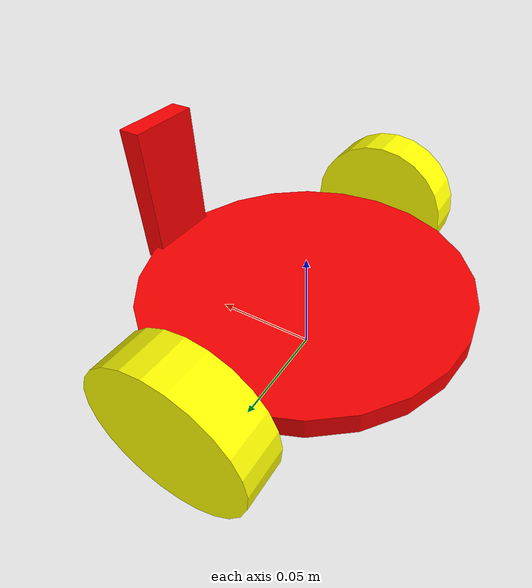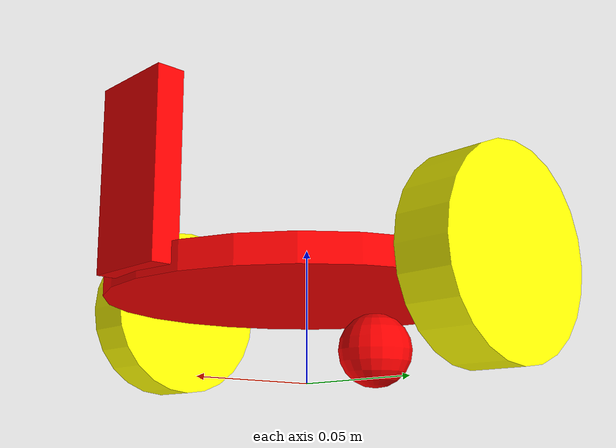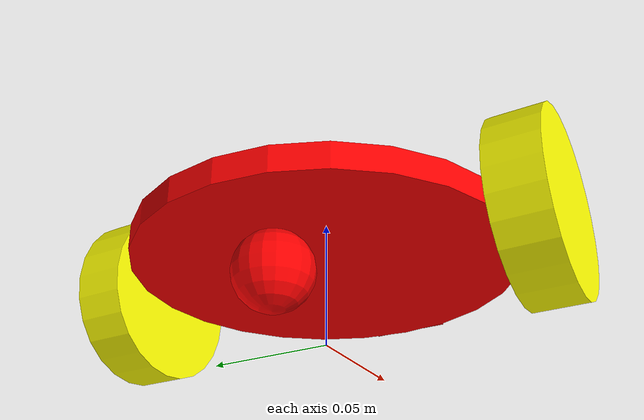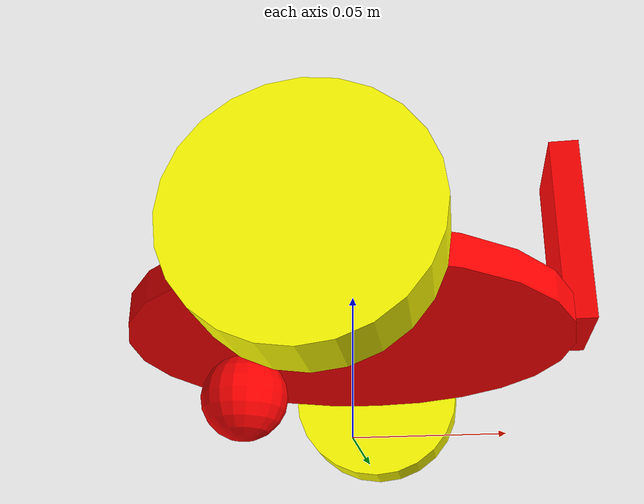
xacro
<?xml version="1.0" encoding="UTF-8"?>
<robot xmlns:xacro= "http://www.ros.org/wiki/xacro" name="GoPiGo3">
<xacro:property name="width_base" value="0.01"/>
<xacro:property name="radius_base" value="0.075"/>
<xacro:property name="radius_wheel" value="0.0350"/>
<xacro:property name="width_wheel" value="0.02"/>
<xacro:property name="pi" value="3.1415"/>
<xacro:property name="camera_height" value="0.065"/>
<xacro:property name="counter_weight_radius" value="0.0150">

</xacro:property>
<material name="red">
    <color rgba="1.0 0.0 0.0 1.0"/>
</material>
<material name="yellow">
    <color rgba="1.0 1.0 0.0 1.0"/>
</material>
<xacro:macro name="default_inertia" params="mass">
    <inertial>
        <mass value="${mass/10}"/>
        <inertia ixx="0.001" ixy="0.0" ixz="0.0" iyy="0.001" iyz="0.0" izz="0.001"/>
    </inertial>
</xacro:macro>
<xacro:macro name="wheel" params="preffix">
    <link name="${preffix}_wheel">
        <visual>
            <geometry>
                <cylinder radius="${radius_wheel}" length="${width_wheel}"/>
            </geometry>
             <material name="yellow"/>
            <origin rpy="${pi/2} 0.0 0.0" xyz="0.0 0.0 0.0"/>
        </visual>
        <collision>
            <geometry>
                <cylinder radius="${radius_wheel}" length="${width_wheel}"/>
            </geometry>
            <origin rpy="${pi/2} 0.0 0.0" xyz="0.0 0.0 0.0"/>
        </collision>
        <xacro:default_inertia mass="1.0"/>
    </link>
    <!-- Transmission Elements-->
<gazebo reference="${preffix}_wheel">
    <material>
        Gazebo/Grey
    </material>
</gazebo>
    <transmission name="${preffix}_wheel_trans">
        <type>
            transmission_interface/SimpleTransmission
        </type>
        <actuator name="${preffix}_wheel_motor">
            <mechanicalReduction>
                1.0
            </mechanicalReduction>
        </actuator>
        <joint name="${preffix}_wheel_to_base_link" type="continuous">
            <hardwareInterface>
                hardware_interface/VelocityJointInterface
            </hardwareInterface>
        </joint>
</transmission>
</xacro:macro>

<xacro:macro name="wheel_joint" params="preffix orientation">
    <joint name="${preffix}_wheel_to_base_link" type="continuous">
        <parent link="base_link"/>
        <child  link="${preffix}_wheel"/>
        <origin xyz="0.0 ${orientation*(radius_base+(width_wheel/2))} ${radius_wheel}" rpy="0.0 0.0 0.0"/>
        <axis xyz="0.0 1.0 0.0"/>
    </joint>
</xacro:macro>

<link name="base_link">
    <visual>
        <geometry>
            <cylinder radius="${radius_base}" length="${width_base}"/>
        </geometry>
        <origin rpy="0.0 0.0 0.0" xyz="0.0 0.0 ${radius_wheel}"/>
        <material name="red"/>
    </visual>
    <collision>
        <geometry>
            <cylinder radius="${radius_base}" length="${width_base}"/>
        </geometry>
            <origin rpy="0.0 0.0 0.0" xyz="0.0 0.0 ${radius_wheel}"/>
    </collision>
    <xacro:default_inertia mass="1.0"/>
</link>
<xacro:wheel_joint preffix="right" orientation="-1.0"/>
<xacro:wheel preffix="right"/>
<xacro:wheel_joint preffix="left" orientation="1.0"/>
<xacro:wheel preffix="left"/>
<joint name="counter_weight_to_base_link" type="fixed">
    <parent link="base_link"/>
    <child  link="counter_weight"/>
    <origin xyz="${-1*radius_base/2}  0.0 ${radius_wheel - counter_weight_radius - width_base/2}"/>
    <axis xyz="1.0 0.0 0.0"/>
</joint>
<link name="counter_weight">
    <visual>
        <geometry>
            <sphere radius="${counter_weight_radius}"/>
        </geometry>
        <origin rpy="0.0 0 0.0" xyz="0.0 0.0 0.0"/>
        <material name="red"/>
    </visual>
    <collision>
        <geometry>
            <sphere radius="${counter_weight_radius}"/>
        </geometry>
        <origin rpy="0.0 0 0.0" xyz="0.0 0.0 0.0"/>
    </collision>
    <xacro:default_inertia mass="3.0"/>
    <gazebo reference="$counter_weight">
        <mu1 value="0.0"/>
        <mu2 value="0.0"/>
        <material>
            Gazebo/Red
        </material>
    </gazebo>
</link>
<joint name="camera_link_to_base_link" type="revolute">
    <parent link="base_link"/>
    <child  link="camera_link"/>
    <origin xyz="${radius_base} 0.0 ${camera_height}" rpy="${-pi/2} 0 ${-pi/2}"/>
    <axis xyz="0.0 -1.0 0.0"/>
    <limit lower="${-1*pi}" upper="${pi}" effort="1000" velocity="0.1"/>
</joint>
<link name="camera_link">
    <visual>
        <geometry>
            <box size="${camera_height/2} ${camera_height} ${width_base}"/>
        </geometry>
        <origin rpy="0.0 0.0 0.0" xyz="0.0 0.0 0.0"/>
         <material name="red"/>
    </visual>
    <collision>
        <geometry>
            <box size="${camera_height/2} ${camera_height} ${width_base}"/>
        </geometry>
        <origin rpy="0.0 0.0 0.0" xyz="0.0 0.0 0.0"/>
    </collision>
    <xacro:default_inertia mass="1.0"/>
</link>

<transmission name= "servo">
    <type>
         transmission_interface/SimpleTransmisssion
    </type>
    <actuator name="servo_motor">
        <mechanicalReduction>
            1.0
        </mechanicalReduction>
    </actuator>
    <joint name="camera_link_to_base_link" >
        <hardwareInterface>
            hardware_interface/PositionJointInterface
        </hardwareInterface>
    </joint>
</transmission>
  <!-- camera -->

<!-- Gazebo -->
<gazebo reference="camera_link">
    <sensor name="camera_1" type="camera" update_rate="30.0">
    <parent link="camera_link"/>
    <camera name="head">
    <horizontal_fov>0.785398</horizontal_fov>
    <pose>0 0 0 ${pi/2} ${-pi/2} 0 </pose>
    <image width="320" height="240" format="RGB8"/>
    <clip>
        <near>0.02</near>
        <far> 300</far>
    </clip>
    <distortion>
        <k1>0.0809380</k1>
        <k2>-0.257429 </k2>
        <k3>0.0</k3>
        <p1>-0.002955</p1>
        <p2>0.003629</p2>
        <center>0.5 0.5</center>
    </distortion>
    </camera>
    <!-- Sensor camera -->
    <plugin name="camera_controller" filename="libgazebo_ros_camera.so">
        <alwaysOn>
            true
        </alwaysOn>
        <updateRate>
            30.0
        </updateRate>
        <cameraName>
            gpg
        </cameraName>
        <imageTopicName>
            image
        </imageTopicName>
        <cameraInfoTopicName>
            camera_info
        </cameraInfoTopicName>
        <frameName>
            camera_link
        </frameName>
        <hackBaseline>
            0.0
        </hackBaseline>
        <distortionK1>0.0809380</distortionK1>
        <distortionK2>-0.257429</distortionK2>
        <distortionK3>0.0</distortionK3>
        <distortionT1>-0.002955</distortionT1>
        <distortionT2>0.003629</distortionT2>
    </plugin>
    </sensor>
</gazebo>
<!-- ros_control plugin-->
<gazebo>
    <plugin name="gazebo_ros_control" filename="libgazebo_ros_control.so">
        <robotNamespace>
            /gpg
        </robotNamespace>
        <legacyModeNS>
            false
        </legacyModeNS>
    </plugin>
</gazebo>

</robot>
